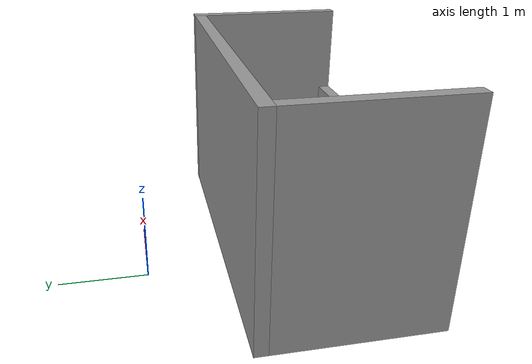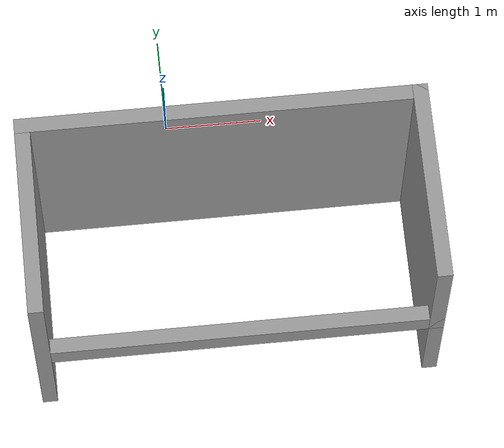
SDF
<?xml version='1.0'?>
<sdf version='1.6'>
  <model name='wall_small'>
    <pose frame=''>0.505 -1.905 0 0 -0 0</pose>
    <link name='Wall_1'>
      <collision name='Wall_1_Collision'>
        <geometry>
          <box>
            <size>4 0.15 0.25</size>
          </box>
        </geometry>
        <pose frame=''>0 0 1.25 0 -0 0</pose>
      </collision>
      <visual name='Wall_1_Visual'>
        <pose frame=''>0 0 1.25 0 -0 0</pose>
        <geometry>
          <box>
            <size>4 0.15 0.25</size>
          </box>
        </geometry>
        <material>
          <script>
            <uri>file://media/materials/scripts/gazebo.material</uri>
            <name>Gazebo/Grey</name>
          </script>
          <ambient>1 1 1 1</ambient>
        </material>
      </visual>
      <pose frame=''>0 -0.925 0 0 -0 0</pose>
    </link>
    <link name='Wall_2'>
      <collision name='Wall_2_Collision'>
        <geometry>
          <box>
            <size>10 0.15 2.5</size>
          </box>
        </geometry>
        <pose frame=''>0 0 1.25 0 -0 0</pose>
      </collision>
      <visual name='Wall_2_Visual'>
        <pose frame=''>0 0 1.25 0 -0 0</pose>
        <geometry>
          <box>
            <size>2 0.15 2.5</size>
          </box>
        </geometry>
        <material>
          <script>
            <uri>file://media/materials/scripts/gazebo.material</uri>
            <name>Gazebo/Grey</name>
          </script>
          <ambient>1 1 1 1</ambient>
        </material>
      </visual>
      <pose frame=''>1.925 0 0 0 -0 1.5708</pose>
    </link>
    <link name='Wall_3'>
      <collision name='Wall_3_Collision'>
        <geometry>
          <box>
            <size>4 0.15 2.5</size>
          </box>
        </geometry>
        <pose frame=''>0 0 1.25 0 -0 0</pose>
      </collision>
      <visual name='Wall_3_Visual'>
        <pose frame=''>0 0 1.25 0 -0 0</pose>
        <geometry>
          <box>
            <size>4 0.15 2.5</size>
          </box>
        </geometry>
        <material>
          <script>
            <uri>file://media/materials/scripts/gazebo.material</uri>
            <name>Gazebo/Grey</name>
          </script>
          <ambient>1 1 1 1</ambient>
        </material>
      </visual>
      <pose frame=''>0 0.925 0 0 -0 3.14159</pose>
    </link>
    <link name='Wall_4'>
      <collision name='Wall_4_Collision'>
        <geometry>
          <box>
            <size>2 0.15 2.5</size>
          </box>
        </geometry>
        <pose frame=''>0 0 1.25 0 -0 0</pose>
      </collision>
      <visual name='Wall_4_Visual'>
        <pose frame=''>0 0 1.25 0 -0 0</pose>
        <geometry>
          <box>
            <size>2 0.15 2.5</size>
          </box>
        </geometry>
        <material>
          <script>
            <uri>file://media/materials/scripts/gazebo.material</uri>
            <name>Gazebo/Grey</name>
          </script>
          <ambient>1 1 1 1</ambient>
        </material>
      </visual>
      <pose frame=''>-1.925 0 0 0 0 -1.5708</pose>
    </link>
    <static>1</static>
  </model>
</sdf>
